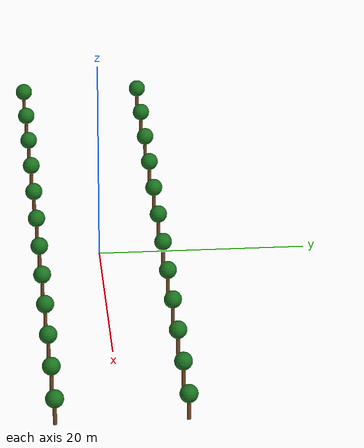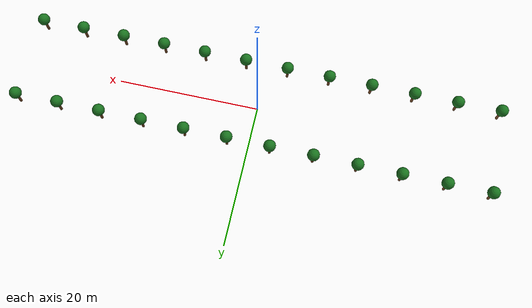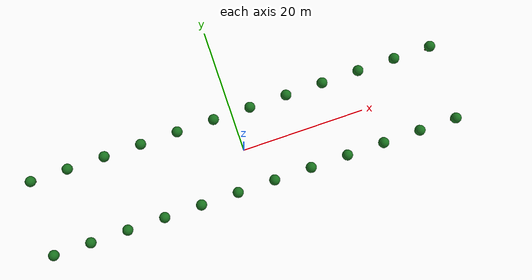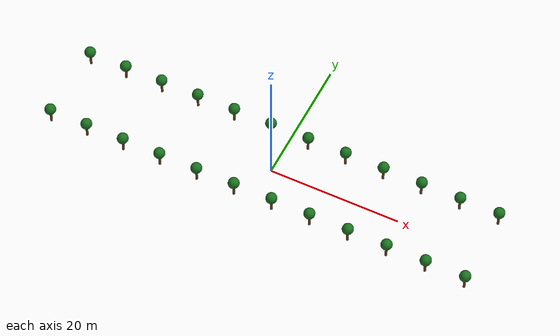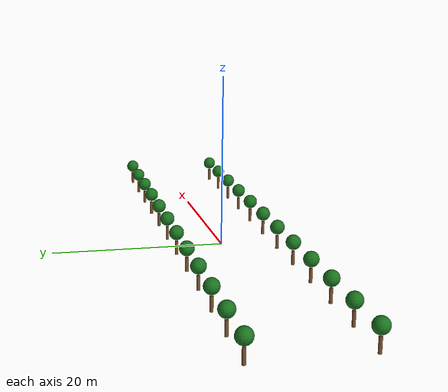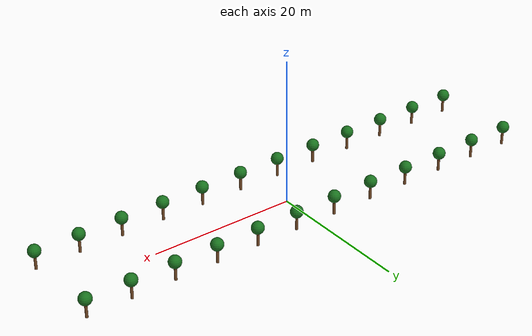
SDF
<sdf version="1.8">
 <world name="hilly_orchard_world">
  <scene><ambient>0.6 0.6 0.6 1</ambient><background>0.85 0.9 1 1</background></scene>
  <light name="sun" type="directional">
   <pose>0 0 10 0 0 0</pose>
   <diffuse>1 1 1 1</diffuse>
   <specular>0.2 0.2 0.2 1</specular>
   <direction>-0.2 0.2 -1</direction>
  </light>
  <include><name>tree_r1_00</name><pose>-33 -6 0 0 0 0.10</pose><uri>model://simple_tree</uri></include>
  <include><name>tree_r1_01</name><pose>-27 -6 0 0 0 0.25</pose><uri>model://simple_tree</uri></include>
  <include><name>tree_r1_02</name><pose>-21 -6 0 0 0 0.05</pose><uri>model://simple_tree</uri></include>
  <include><name>tree_r1_03</name><pose>-15 -6 0 0 0 0.20</pose><uri>model://simple_tree</uri></include>
  <include><name>tree_r1_04</name><pose>-9  -6 0 0 0 0.15</pose><uri>model://simple_tree</uri></include>
  <include><name>tree_r1_05</name><pose>-3  -6 0 0 0 0.30</pose><uri>model://simple_tree</uri></include>
  <include><name>tree_r1_06</name><pose>3   -6 0 0 0 0.00</pose><uri>model://simple_tree</uri></include>
  <include><name>tree_r1_07</name><pose>9   -6 0 0 0 0.22</pose><uri>model://simple_tree</uri></include>
  <include><name>tree_r1_08</name><pose>15  -6 0 0 0 0.12</pose><uri>model://simple_tree</uri></include>
  <include><name>tree_r1_09</name><pose>21  -6 0 0 0 0.28</pose><uri>model://simple_tree</uri></include>
  <include><name>tree_r1_10</name><pose>27  -6 0 0 0 0.08</pose><uri>model://simple_tree</uri></include>
  <include><name>tree_r1_11</name><pose>33  -6 0 0 0 0.18</pose><uri>model://simple_tree</uri></include>
  <include><name>tree_r2_00</name><pose>-33 6 0 0 0 0.12</pose><uri>model://simple_tree</uri></include>
  <include><name>tree_r2_01</name><pose>-27 6 0 0 0 0.06</pose><uri>model://simple_tree</uri></include>
  <include><name>tree_r2_02</name><pose>-21 6 0 0 0 0.26</pose><uri>model://simple_tree</uri></include>
  <include><name>tree_r2_03</name><pose>-15 6 0 0 0 0.14</pose><uri>model://simple_tree</uri></include>
  <include><name>tree_r2_04</name><pose>-9  6 0 0 0 0.30</pose><uri>model://simple_tree</uri></include>
  <include><name>tree_r2_05</name><pose>-3  6 0 0 0 0.02</pose><uri>model://simple_tree</uri></include>
  <include><name>tree_r2_06</name><pose>3   6 0 0 0 0.20</pose><uri>model://simple_tree</uri></include>
  <include><name>tree_r2_07</name><pose>9   6 0 0 0 0.10</pose><uri>model://simple_tree</uri></include>
  <include><name>tree_r2_08</name><pose>15  6 0 0 0 0.28</pose><uri>model://simple_tree</uri></include>
  <include><name>tree_r2_09</name><pose>21  6 0 0 0 0.04</pose><uri>model://simple_tree</uri></include>
  <include><name>tree_r2_10</name><pose>27  6 0 0 0 0.16</pose><uri>model://simple_tree</uri></include>
  <include><name>tree_r2_11</name><pose>33  6 0 0 0 0.24</pose><uri>model://simple_tree</uri></include>
 </world>
</sdf>

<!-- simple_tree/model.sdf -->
<sdf version="1.8">
  <model name="simple_tree">
    <static>true</static>
    <link name="link">
      <!-- Trunk -->
      <pose>0 0 0.8 0 0 0</pose>
      <collision name="trunk_collision">
        <geometry>
          <cylinder>
            <radius>0.18</radius>
            <length>1.6</length>
          </cylinder>
        </geometry>
      </collision>
      <visual name="trunk_visual">
        <geometry>
          <cylinder>
            <radius>0.18</radius>
            <length>1.6</length>
          </cylinder>
        </geometry>
        <material>
          <ambient>0.35 0.22 0.12 1</ambient>
          <diffuse>0.45 0.28 0.14 1</diffuse>
          <specular>0.05 0.05 0.05 1</specular>
        </material>
      </visual>

      <!-- Foliage canopy (simple ellipsoid using scaled sphere) -->
      <collision name="canopy_collision">
        <pose>0 0 1.8 0 0 0</pose>
        <geometry>
          <sphere>
            <radius>0.85</radius>
          </sphere>
        </geometry>
      </collision>
      <visual name="canopy_visual">
        <pose>0 0 1.8 0 0 0</pose>
        <geometry>
          <sphere>
            <radius>0.85</radius>
          </sphere>
        </geometry>
        <material>
          <ambient>0.12 0.25 0.12 1</ambient>
          <diffuse>0.10 0.45 0.12 1</diffuse>
          <specular>0.02 0.02 0.02 1</specular>
        </material>
      </visual>
    </link>
  </model>
</sdf>
